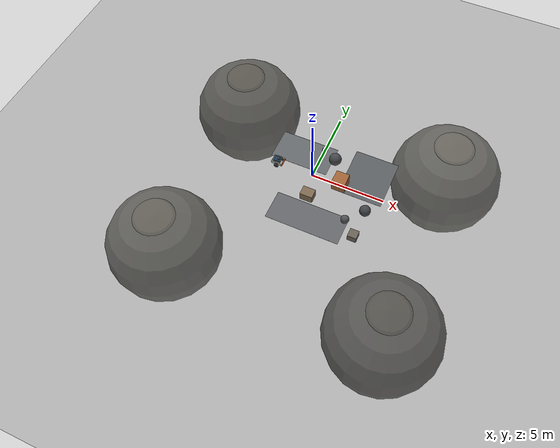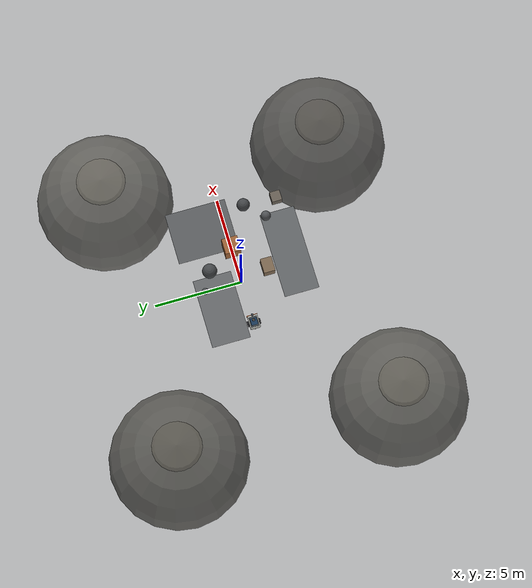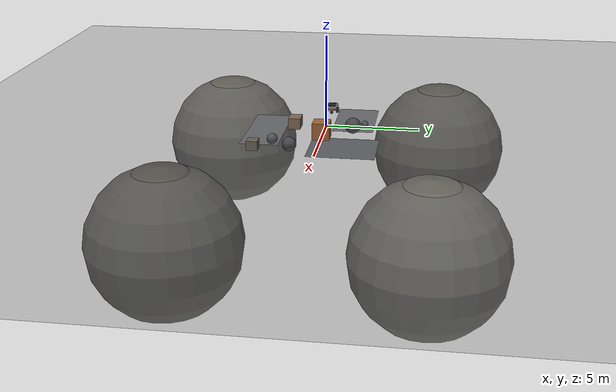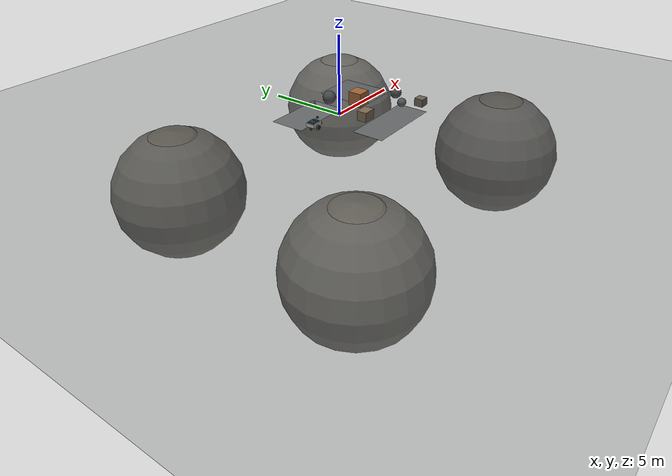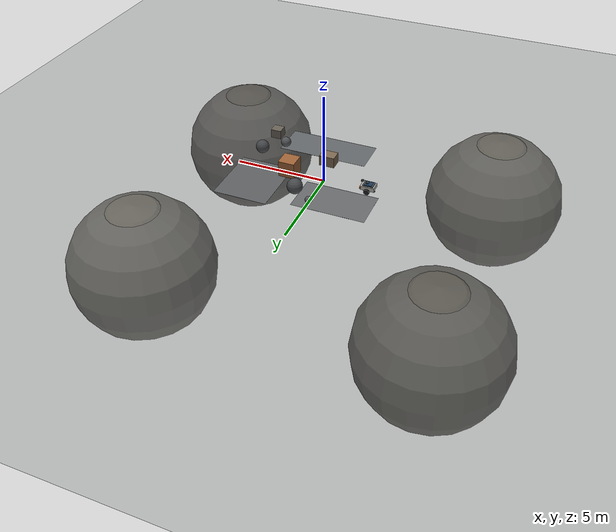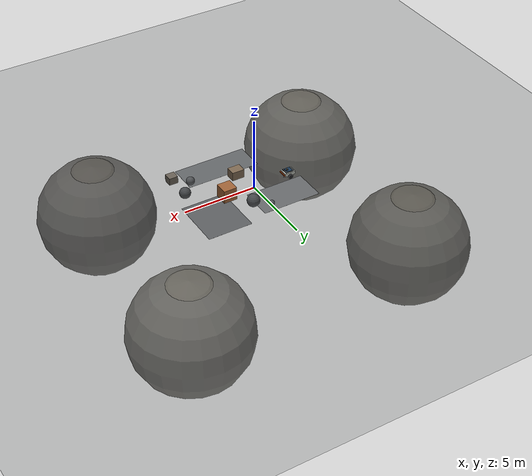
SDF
<?xml version="1.0"?>
<sdf version="1.8">
  <world name="lunar_base_camp">
    <physics name="lunar_physics" type="ignored">
      <max_step_size>0.004</max_step_size>
      <real_time_factor>1.0</real_time_factor>
    </physics>
    <gravity>0 0 -1.62</gravity>
    <scene>
      <ambient>0.12 0.12 0.14 1</ambient>
      <background>0.008 0.010 0.018 1</background>
      <shadows>true</shadows>
    </scene>

    <!-- Systems required for rigid-body physics, entity updates and live sensors. -->
    <plugin filename="ignition-gazebo-physics-system" name="gz::sim::systems::Physics"/>
    <plugin filename="ignition-gazebo-user-commands-system" name="gz::sim::systems::UserCommands"/>
    <plugin filename="ignition-gazebo-scene-broadcaster-system" name="gz::sim::systems::SceneBroadcaster"/>
    <plugin filename="ignition-gazebo-sensors-system" name="gz::sim::systems::Sensors">
      <render_engine>ogre2</render_engine>
    </plugin>

    <light type="directional" name="lunar_sun">
      <pose>0 0 30 0 0 0</pose>
      <cast_shadows>true</cast_shadows>
      <diffuse>0.88 0.86 0.80 1</diffuse>
      <specular>0.10 0.10 0.10 1</specular>
      <direction>-0.45 0.20 -0.87</direction>
    </light>

    <!-- Level central test surface; low-relief mounds outside the spawn lane
         provide visible physical terrain without disturbing straight-line tests. -->
    <model name="lunar_regolith">
      <static>true</static>
      <link name="ground_link">
        <collision name="ground_collision">
          <geometry><plane><normal>0 0 1</normal><size>100 100</size></plane></geometry>
        </collision>
        <visual name="ground_visual">
          <geometry><plane><normal>0 0 1</normal><size>100 100</size></plane></geometry>
          <material>
            <ambient>0.34 0.35 0.36 1</ambient>
            <diffuse>0.42 0.43 0.44 1</diffuse>
            <specular>0.03 0.03 0.03 1</specular>
          </material>
        </visual>
      </link>
    </model>

    <!-- Low-contrast visual albedo patches add surface variation only; they have
         no collision geometry and therefore cannot affect the rover's physics. -->
    <model name="regolith_patch_a">
      <static>true</static><pose>-1.2 1.5 0.002 0 0 0</pose>
      <link name="patch_link"><visual name="patch_visual">
        <geometry><box><size>4.0 2.2 0.002</size></box></geometry>
        <material><ambient>0.37 0.38 0.39 1</ambient><diffuse>0.39 0.40 0.41 1</diffuse></material>
      </visual></link>
    </model>
    <model name="regolith_patch_b">
      <static>true</static><pose>3.5 1.3 0.002 0 0 0</pose>
      <link name="patch_link"><visual name="patch_visual">
        <geometry><box><size>3.0 3.5 0.002</size></box></geometry>
        <material><ambient>0.32 0.33 0.34 1</ambient><diffuse>0.35 0.36 0.37 1</diffuse></material>
      </visual></link>
    </model>
    <model name="regolith_patch_c">
      <static>true</static><pose>1.0 -3.1 0.002 0 0 0</pose>
      <link name="patch_link"><visual name="patch_visual">
        <geometry><box><size>5.0 2.0 0.002</size></box></geometry>
        <material><ambient>0.36 0.37 0.38 1</ambient><diffuse>0.38 0.39 0.40 1</diffuse></material>
      </visual></link>
    </model>

    <model name="regolith_mound_northwest">
      <static>true</static><pose>-8 6 -3.75 0 0 0</pose>
      <link name="mound_link">
        <collision name="mound_collision"><geometry><sphere><radius>4.0</radius></sphere></geometry></collision>
        <visual name="mound_visual">
          <geometry><sphere><radius>4.0</radius></sphere></geometry>
          <material><ambient>0.26 0.25 0.23 1</ambient><diffuse>0.34 0.33 0.30 1</diffuse></material>
        </visual>
      </link>
    </model>
    <model name="regolith_mound_northeast">
      <static>true</static><pose>8 6 -3.75 0 0 0</pose>
      <link name="mound_link">
        <collision name="mound_collision"><geometry><sphere><radius>4.0</radius></sphere></geometry></collision>
        <visual name="mound_visual">
          <geometry><sphere><radius>4.0</radius></sphere></geometry>
          <material><ambient>0.30 0.29 0.27 1</ambient><diffuse>0.39 0.38 0.35 1</diffuse></material>
        </visual>
      </link>
    </model>
    <model name="regolith_mound_southwest">
      <static>true</static><pose>-8 -7 -3.75 0 0 0</pose>
      <link name="mound_link">
        <collision name="mound_collision"><geometry><sphere><radius>4.0</radius></sphere></geometry></collision>
        <visual name="mound_visual">
          <geometry><sphere><radius>4.0</radius></sphere></geometry>
          <material><ambient>0.29 0.28 0.26 1</ambient><diffuse>0.37 0.36 0.33 1</diffuse></material>
        </visual>
      </link>
    </model>
    <model name="regolith_mound_southeast">
      <static>true</static><pose>8 -7 -3.75 0 0 0</pose>
      <link name="mound_link">
        <collision name="mound_collision"><geometry><sphere><radius>4.0</radius></sphere></geometry></collision>
        <visual name="mound_visual">
          <geometry><sphere><radius>4.0</radius></sphere></geometry>
          <material><ambient>0.24 0.23 0.22 1</ambient><diffuse>0.32 0.31 0.29 1</diffuse></material>
        </visual>
      </link>
    </model>

    <!-- Main rover: wheels contact z=0, with a clear forward test lane to the
         physical blocker at x=2 m. The include resolves via IGN_GAZEBO_RESOURCE_PATH. -->
    <include>
      <uri>model://lunabot_rover</uri>
      <name>lunabot</name>
      <pose>-2.5 0 0 0 0 0</pose>
    </include>

    <!-- Small rock: spherical visual and collision geometry are both present. -->
    <model name="small_rock">
      <static>true</static><pose>0.0 2.1 0.19 0 0 0</pose>
      <link name="rock_link">
        <collision name="rock_collision"><geometry><sphere><radius>0.19</radius></sphere></geometry></collision>
        <visual name="rock_visual">
          <geometry><sphere><radius>0.19</radius></sphere></geometry>
          <material><ambient>0.25 0.26 0.27 1</ambient><diffuse>0.31 0.32 0.33 1</diffuse></material>
        </visual>
      </link>
    </model>

    <!-- Larger boulder for visible long-range camera / LiDAR tests. -->
    <model name="large_boulder">
      <static>true</static><pose>1.0 1.55 0.42 0 0 0</pose>
      <link name="boulder_link">
        <collision name="boulder_collision"><geometry><sphere><radius>0.42</radius></sphere></geometry></collision>
        <visual name="boulder_visual">
          <geometry><sphere><radius>0.42</radius></sphere></geometry>
          <material><ambient>0.22 0.23 0.24 1</ambient><diffuse>0.27 0.28 0.29 1</diffuse></material>
        </visual>
      </link>
    </model>

    <!-- Low physical hurdle: deliberately shorter than the main blocker. -->
    <model name="low_obstacle">
      <static>true</static><pose>0.4 -1.65 0.30 0 0 0</pose>
      <link name="hurdle_link">
        <collision name="hurdle_collision"><geometry><box><size>0.85 0.65 0.60</size></box></geometry></collision>
        <visual name="hurdle_visual">
          <geometry><box><size>0.85 0.65 0.60</size></box></geometry>
          <material><ambient>0.42 0.35 0.27 1</ambient><diffuse>0.48 0.40 0.31 1</diffuse></material>
        </visual>
      </link>
    </model>

    <!-- Large, unambiguous obstacle on the initial straight drive line. -->
    <model name="forward_blocker">
      <static>true</static><pose>2.0 0 0.45 0 0 0</pose>
      <link name="blocker_link">
        <collision name="blocker_collision"><geometry><box><size>0.90 0.90 0.90</size></box></geometry></collision>
        <visual name="blocker_visual">
          <geometry><box><size>0.90 0.90 0.90</size></box></geometry>
          <material><ambient>0.53 0.32 0.18 1</ambient><diffuse>0.61 0.38 0.21 1</diffuse></material>
        </visual>
      </link>
    </model>

    <!-- A small manoeuvring cluster with rover-width gaps. -->
    <model name="cluster_rock_a">
      <static>true</static><pose>3.3 -2.4 0.28 0 0 0</pose>
      <link name="rock_link">
        <collision name="rock_collision"><geometry><sphere><radius>0.28</radius></sphere></geometry></collision>
        <visual name="rock_visual"><geometry><sphere><radius>0.28</radius></sphere></geometry><material><ambient>0.25 0.26 0.27 1</ambient><diffuse>0.31 0.32 0.33 1</diffuse></material></visual>
      </link>
    </model>
    <model name="cluster_rock_b">
      <static>true</static><pose>4.25 -1.35 0.37 0 0 0</pose>
      <link name="rock_link">
        <collision name="rock_collision"><geometry><sphere><radius>0.37</radius></sphere></geometry></collision>
        <visual name="rock_visual"><geometry><sphere><radius>0.37</radius></sphere></geometry><material><ambient>0.20 0.21 0.22 1</ambient><diffuse>0.26 0.27 0.28 1</diffuse></material></visual>
      </link>
    </model>
    <model name="cluster_rock_c">
      <static>true</static><pose>4.2 -3.25 0.25 0 0 0</pose>
      <link name="rock_link">
        <collision name="rock_collision"><geometry><box><size>0.60 0.58 0.50</size></box></geometry></collision>
        <visual name="rock_visual"><geometry><box><size>0.60 0.58 0.50</size></box></geometry><material><ambient>0.34 0.31 0.28 1</ambient><diffuse>0.40 0.37 0.33 1</diffuse></material></visual>
      </link>
    </model>
  </world>
</sdf>

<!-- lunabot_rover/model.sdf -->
<sdf version="1.8">
  <model name="lunabot_rover">
    <static>false</static>

    <link name="base_link">
      <!-- base_link origin is the chassis centre; base_footprint is at z = 0. -->
      <pose>0 0 0.32 0 0 0</pose>
      <inertial>
        <mass>14.0</mass>
        <inertia>
          <ixx>0.41</ixx><ixy>0</ixy><ixz>0</ixz>
          <iyy>0.71</iyy><iyz>0</iyz><izz>1.01</izz>
        </inertia>
      </inertial>
      <collision name="chassis_collision">
        <geometry><box><size>0.74 0.56 0.22</size></box></geometry>
      </collision>
      <visual name="chassis_visual">
        <geometry><box><size>0.74 0.56 0.22</size></box></geometry>
        <material>
          <ambient>0.66 0.67 0.64 1</ambient>
          <diffuse>0.72 0.73 0.70 1</diffuse>
          <specular>0.12 0.12 0.12 1</specular>
        </material>
      </visual>
      <visual name="upper_deck_visual">
        <pose>-0.02 0 0.13 0 0 0</pose>
        <geometry><box><size>0.58 0.45 0.06</size></box></geometry>
        <material>
          <ambient>0.20 0.23 0.25 1</ambient>
          <diffuse>0.25 0.28 0.30 1</diffuse>
        </material>
      </visual>
      <visual name="lidar_mast_visual">
        <pose>0.06 0 0.15 0 0 0</pose>
        <geometry><cylinder><radius>0.035</radius><length>0.20</length></cylinder></geometry>
        <material>
          <ambient>0.54 0.43 0.24 1</ambient>
          <diffuse>0.64 0.52 0.30 1</diffuse>
        </material>
      </visual>
      <visual name="solar_panel_visual">
        <pose>-0.02 0 0.166 0 0 0</pose>
        <geometry><box><size>0.40 0.38 0.012</size></box></geometry>
        <material>
          <ambient>0.08 0.16 0.24 1</ambient>
          <diffuse>0.10 0.22 0.34 1</diffuse>
          <specular>0.22 0.28 0.34 1</specular>
        </material>
      </visual>
      <visual name="front_bumper_visual">
        <pose>0.385 0 -0.015 0 0 0</pose>
        <geometry><box><size>0.08 0.60 0.07</size></box></geometry>
        <material>
          <ambient>0.55 0.20 0.04 1</ambient>
          <diffuse>0.78 0.30 0.06 1</diffuse>
        </material>
      </visual>
      <!-- Low-friction skid balls support the front and rear of this two-wheel
           chassis. Without them, the single driven axle is pitch-unstable. -->
      <collision name="front_stabilizer_skid_collision">
        <pose>0.28 0 -0.24 0 0 0</pose>
        <geometry><sphere><radius>0.08</radius></sphere></geometry>
        <surface>
          <friction>
            <ode><mu>0.08</mu><mu2>0.08</mu2><slip1>0.10</slip1><slip2>0.10</slip2></ode>
          </friction>
        </surface>
      </collision>
      <visual name="front_stabilizer_skid_visual">
        <pose>0.28 0 -0.24 0 0 0</pose>
        <geometry><sphere><radius>0.08</radius></sphere></geometry>
        <material><ambient>0.10 0.10 0.11 1</ambient><diffuse>0.14 0.14 0.15 1</diffuse></material>
      </visual>
      <collision name="rear_stabilizer_skid_collision">
        <pose>-0.28 0 -0.24 0 0 0</pose>
        <geometry><sphere><radius>0.08</radius></sphere></geometry>
        <surface>
          <friction>
            <ode><mu>0.08</mu><mu2>0.08</mu2><slip1>0.10</slip1><slip2>0.10</slip2></ode>
          </friction>
        </surface>
      </collision>
      <visual name="rear_stabilizer_skid_visual">
        <pose>-0.28 0 -0.24 0 0 0</pose>
        <geometry><sphere><radius>0.08</radius></sphere></geometry>
        <material><ambient>0.10 0.10 0.11 1</ambient><diffuse>0.14 0.14 0.15 1</diffuse></material>
      </visual>
    </link>

    <!-- Left and right wheels have true revolute joints and physical contact. -->
    <link name="left_wheel">
      <pose>0 0.31 0.16 1.57079632679 0 0</pose>
      <inertial>
        <mass>1.5</mass>
        <inertia>
          <ixx>0.0109</ixx><ixy>0</ixy><ixz>0</ixz>
          <iyy>0.0109</iyy><iyz>0</iyz><izz>0.0192</izz>
        </inertia>
      </inertial>
      <collision name="wheel_collision">
        <geometry><cylinder><radius>0.16</radius><length>0.12</length></cylinder></geometry>
        <surface>
          <friction>
            <ode><mu>1.5</mu><mu2>1.5</mu2><slip1>0.01</slip1><slip2>0.01</slip2></ode>
          </friction>
        </surface>
      </collision>
      <visual name="wheel_visual">
        <geometry><cylinder><radius>0.16</radius><length>0.12</length></cylinder></geometry>
        <material>
          <ambient>0.09 0.09 0.10 1</ambient>
          <diffuse>0.13 0.13 0.14 1</diffuse>
        </material>
      </visual>
    </link>
    <joint name="left_wheel_joint" type="revolute">
      <parent>base_link</parent><child>left_wheel</child>
      <axis>
        <!-- Wheel link is rotated so its local Z axis is the lateral axle. -->
        <xyz>0 0 1</xyz>
        <limit><lower>-1.0e16</lower><upper>1.0e16</upper><effort>80</effort><velocity>25</velocity></limit>
        <dynamics><damping>0.02</damping><friction>0.0</friction></dynamics>
      </axis>
    </joint>

    <link name="right_wheel">
      <pose>0 -0.31 0.16 1.57079632679 0 0</pose>
      <inertial>
        <mass>1.5</mass>
        <inertia>
          <ixx>0.0109</ixx><ixy>0</ixy><ixz>0</ixz>
          <iyy>0.0109</iyy><iyz>0</iyz><izz>0.0192</izz>
        </inertia>
      </inertial>
      <collision name="wheel_collision">
        <geometry><cylinder><radius>0.16</radius><length>0.12</length></cylinder></geometry>
        <surface>
          <friction>
            <ode><mu>1.5</mu><mu2>1.5</mu2><slip1>0.01</slip1><slip2>0.01</slip2></ode>
          </friction>
        </surface>
      </collision>
      <visual name="wheel_visual">
        <geometry><cylinder><radius>0.16</radius><length>0.12</length></cylinder></geometry>
        <material>
          <ambient>0.09 0.09 0.10 1</ambient>
          <diffuse>0.13 0.13 0.14 1</diffuse>
        </material>
      </visual>
    </link>
    <joint name="right_wheel_joint" type="revolute">
      <parent>base_link</parent><child>right_wheel</child>
      <axis>
        <xyz>0 0 1</xyz>
        <limit><lower>-1.0e16</lower><upper>1.0e16</upper><effort>80</effort><velocity>25</velocity></limit>
        <dynamics><damping>0.02</damping><friction>0.0</friction></dynamics>
      </axis>
    </joint>

    <!-- The camera looks along local +X; ROS image headers use the optical frame. -->
    <link name="camera_link">
      <pose relative_to="base_link">0.40 0 0.28 0 0 0</pose>
      <inertial>
        <mass>0.12</mass>
        <inertia><ixx>0.001</ixx><ixy>0</ixy><ixz>0</ixz><iyy>0.001</iyy><iyz>0</iyz><izz>0.001</izz></inertia>
      </inertial>
      <visual name="camera_housing_visual">
        <!-- Keep the housing behind the optical centre so it cannot block the image. -->
        <pose>-0.06 0 0 0 0 0</pose>
        <geometry><box><size>0.12 0.11 0.08</size></box></geometry>
        <material>
          <ambient>0.16 0.19 0.22 1</ambient>
          <diffuse>0.20 0.24 0.27 1</diffuse>
        </material>
      </visual>
      <sensor name="front_camera" type="camera">
        <pose>0 0 0 0 0 0</pose>
        <always_on>true</always_on>
        <visualize>true</visualize>
        <update_rate>20</update_rate>
        <topic>/camera/image_raw</topic>
        <camera>
          <horizontal_fov>1.04719755</horizontal_fov>
          <image><width>640</width><height>480</height><format>R8G8B8</format></image>
          <clip><near>0.05</near><far>30.0</far></clip>
          <optical_frame_id>camera_optical_frame</optical_frame_id>
        </camera>
      </sensor>
    </link>
    <joint name="camera_mount_joint" type="fixed">
      <parent>base_link</parent><child>camera_link</child>
    </joint>

    <!-- Horizontal 360-degree range scan, centred at rover-forward +X. -->
    <link name="lidar_link">
      <pose relative_to="base_link">0.06 0 0.20 0 0 0</pose>
      <inertial>
        <mass>0.10</mass>
        <inertia><ixx>0.0005</ixx><ixy>0</ixy><ixz>0</ixz><iyy>0.0005</iyy><iyz>0</iyz><izz>0.0005</izz></inertia>
      </inertial>
      <visual name="lidar_housing_visual">
        <geometry><cylinder><radius>0.075</radius><length>0.055</length></cylinder></geometry>
        <material>
          <ambient>0.23 0.24 0.25 1</ambient>
          <diffuse>0.28 0.29 0.30 1</diffuse>
        </material>
      </visual>
      <sensor name="front_lidar" type="gpu_lidar">
        <pose>0 0 0 0 0 0</pose>
        <always_on>true</always_on>
        <visualize>true</visualize>
        <update_rate>10</update_rate>
        <topic>/scan</topic>
        <ray>
          <scan>
            <horizontal>
              <samples>720</samples><resolution>1</resolution>
              <min_angle>-3.14159265</min_angle><max_angle>3.14159265</max_angle>
            </horizontal>
            <vertical>
              <samples>1</samples><resolution>1</resolution>
              <min_angle>0</min_angle><max_angle>0</max_angle>
            </vertical>
          </scan>
          <range>
            <min>0.12</min><max>15.0</max><resolution>0.01</resolution>
          </range>
          <noise><type>gaussian</type><mean>0.0</mean><stddev>0.005</stddev></noise>
        </ray>
      </sensor>
    </link>
    <joint name="lidar_mount_joint" type="fixed">
      <parent>base_link</parent><child>lidar_link</child>
    </joint>

    <!-- One Gazebo DiffDrive system owns wheel control and wheel-model odometry. -->
    <plugin filename="ignition-gazebo-diff-drive-system" name="gz::sim::systems::DiffDrive">
      <left_joint>left_wheel_joint</left_joint>
      <right_joint>right_wheel_joint</right_joint>
      <wheel_separation>0.62</wheel_separation>
      <wheel_radius>0.16</wheel_radius>
      <topic>/cmd_vel_sim</topic>
      <odom_topic>/odom</odom_topic>
      <tf_topic>/tf</tf_topic>
      <frame_id>odom</frame_id>
      <child_frame_id>base_footprint</child_frame_id>
      <odom_publish_frequency>30</odom_publish_frequency>
      <min_linear_velocity>-0.35</min_linear_velocity>
      <max_linear_velocity>0.35</max_linear_velocity>
      <min_angular_velocity>-0.80</min_angular_velocity>
      <max_angular_velocity>0.80</max_angular_velocity>
      <min_linear_acceleration>-0.40</min_linear_acceleration>
      <max_linear_acceleration>0.40</max_linear_acceleration>
      <min_angular_acceleration>-0.90</min_angular_acceleration>
      <max_angular_acceleration>0.90</max_angular_acceleration>
    </plugin>
  </model>
</sdf>
